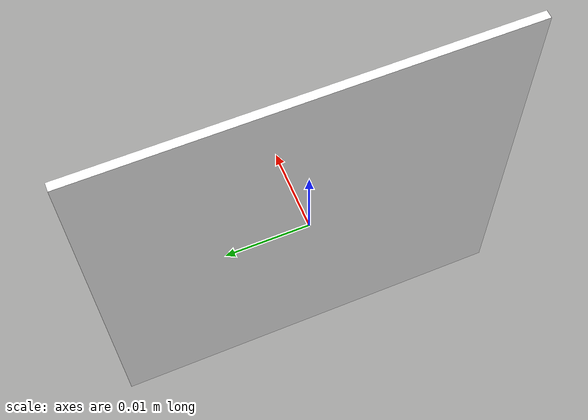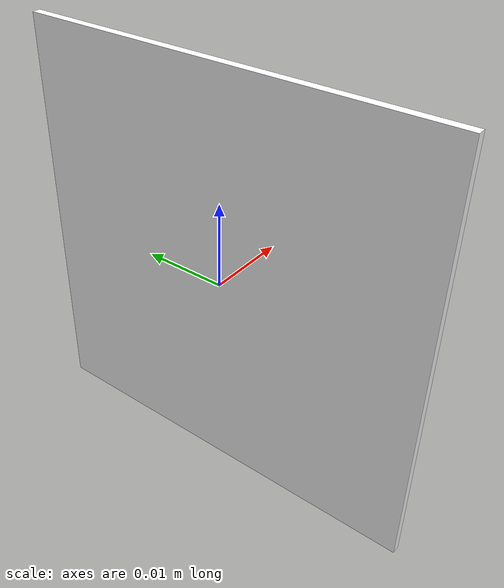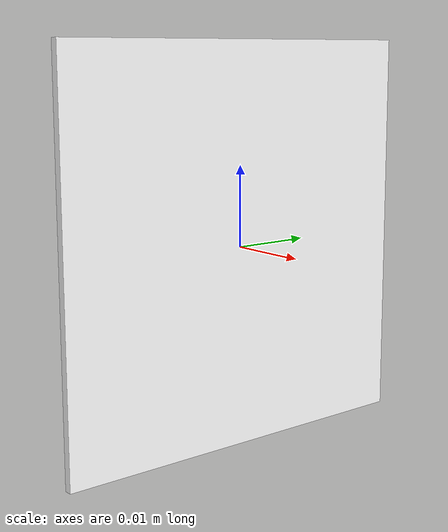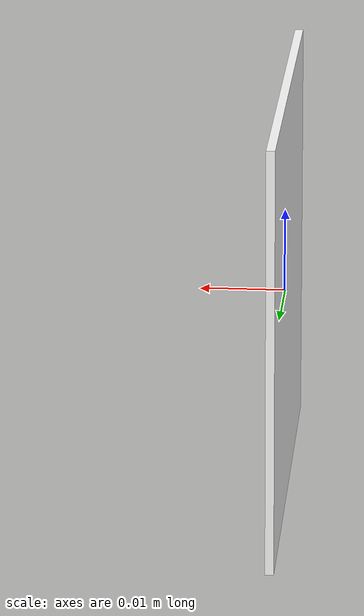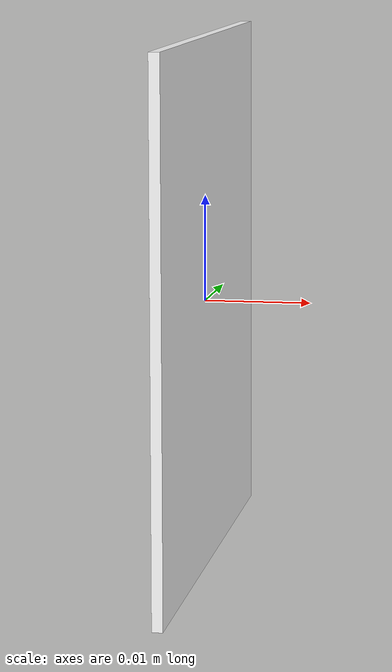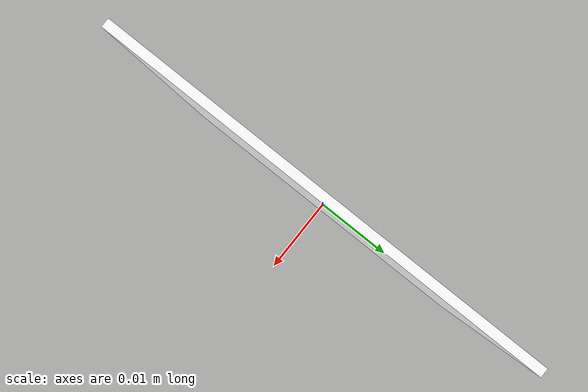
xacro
<?xml version="1.0"?>
<robot name="apriltag_model" xmlns:xacro="http://wiki.ros.org/xacro">
    <xacro:property name="tag_size" value="0.05"/>
    <material name="AprilTag_Texture">
    <texture filename="file://$(find sirgas_description)/urdf/apriltags/tag_1.png"/>
    <color rgba="1 1 1 1"/>
    </material>

    <link name="tag_1_link">
        <visual>
            <origin rpy="0 ${-pi/2} 0" xyz="0 0 0"/>
            <geometry>
                <box size="${tag_size} ${tag_size} 0.001"/>
            </geometry>
            <material name="AprilTag_Texture"/>
        </visual>

        <collision>
            <origin rpy="0 0 0" xyz="0 0 0"/>
            <geometry>
                <box size="${tag_size} ${tag_size} 0.001"/>
            </geometry>
        </collision>

        <inertial>
            <mass value="0.001"/>
            <inertia ixx="0.0000001" ixy="0.0" ixz="0.0" iyx="0.0" iyy="0.0000001" iyz="0.0" izx="0.0" izy="0.0" izz="0.0000001"/>
        </inertial>
    </link>

    <gazebo reference="tag_1_link">
        <material>
            <script>
                <name>AprilTag_Texture</name>
                <uri>file://$(find sirgas_description)/urdf/apriltags/tag_1.png</uri>
            </script>
        </material>
    </gazebo>
</robot>
